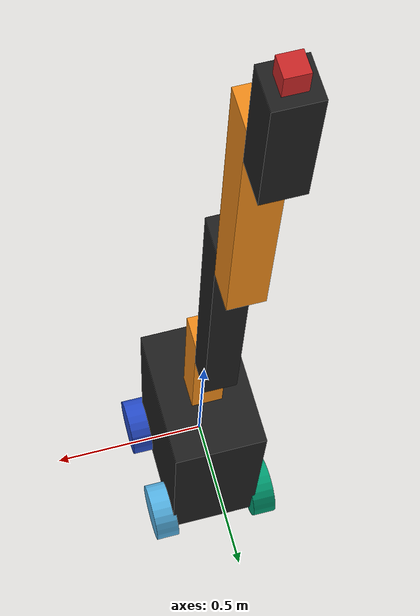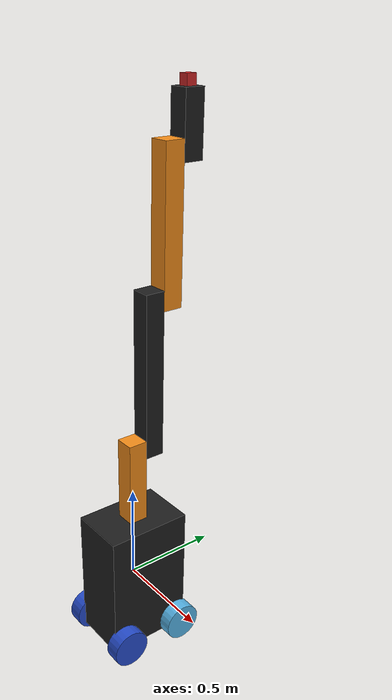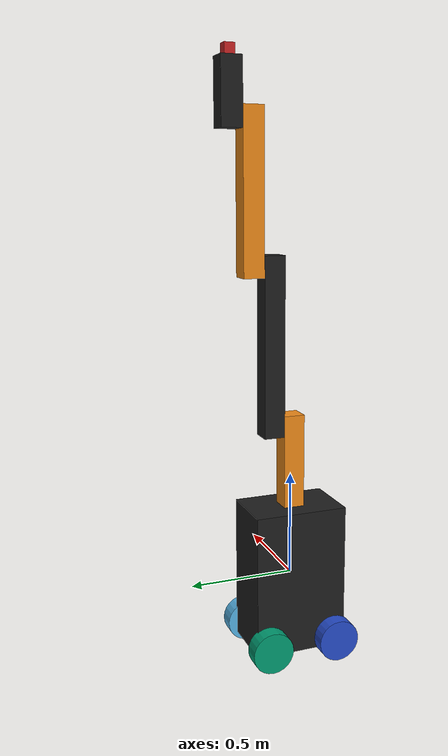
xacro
<?xml version="1.0" ?>
<robot name="rrbot" xmlns:xacro="http://www.ros.org/wiki/xacro">

  <!-- Constants for robot dimensions -->
  <xacro:property name="PI" value="3.1415926535897931"/>
  <xacro:property name="mass1" value="1" />
  <xacro:property name="mass2" value="1" />
  <xacro:property name="mass3" value="1" />
  <xacro:property name="mass4" value="0.5" />
  <xacro:property name="mass_chassis" value="8" /><!-- arbitrary value for mass -->
  <xacro:property name="height" value="0.7" /> <!-- Link 1 -->
  <xacro:property name="x_base" value="0.3" /> <!-- Link 1 -->
  <xacro:property name="y_base" value="0.45" /> <!-- Link 1 -->
  <xacro:property name="castor_offset" value="0.06" /> <!-- Link 1 -->
  <xacro:property name="width" value="0.1" /> <!-- Square dimensions (widthxwidth) of beams -->
  <xacro:property name="height1" value="0.8" /> <!-- Link 1 -->
  <xacro:property name="height2" value="0.85" /> <!-- Link 2 -->
  <xacro:property name="height3" value="0.75" /> <!-- Link 3 -->
  <xacro:property name="height4" value="0.3" /> <!-- Link 4 -->
  <xacro:property name="camera_link" value="0.05" /> <!-- Size of square 'camera' box -->
  <xacro:property name="axel_offset" value="0.05" /> <!-- Space btw top of beam and the each joint -->
  <xacro:include filename="$(find rrbot_description)/urdf/materials.xacro" />
  <xacro:include filename="$(find rrbot_description)/urdf/rr3.gazebo" />
  <xacro:include filename="$(find rrbot_description)/urdf/macros.xacro" />
  <!-- Import all Gazebo-customization elements, including Gazebo colors -->
  <xacro:include filename="$(find rrbot_description)/urdf/rrbot.gazebo" />

  <link name="link_chassis">
    <!-- pose and inertial -->
    <pose>0 0 0.1 0 0 0</pose>
    <inertial>
      <mass value="8"/>
      <origin rpy="0 0 0" xyz="0 0 0"/>
      <inertia ixx="${mass_chassis / 12.0 * (y_base*y_base + height*height)}" ixy="0" ixz="0" iyy="${mass_chassis / 12.0 * (x_base*x_base + height*height)}" iyz="0" izz="${mass_chassis / 12.0 * (y_base*y_base + x_base*x_base)}"/>
    </inertial>
    <!-- body -->
    <collision name="collision_chassis">
      <geometry>
        <box size="${x_base} ${y_base} ${height}"/>
      </geometry>
    </collision>
    <visual>
      <origin rpy="0 0 0" xyz="0 0 0"/>
      <geometry>
        <box size="${x_base} ${y_base} ${height}"/>
      </geometry>
      <material name="black"/>
    </visual>
  </link>

  <joint name="fixed" type="fixed">
    <parent link="link_chassis"/>
    <child link="link1"/>
  </joint>

 <!-- Base Link -->
  <link name="link1">
    <collision>
      <origin xyz="0 0 ${height1/2 + 0.05}" rpy="0 0 0"/>
      <geometry>
	<box size="${width} ${width} ${height1}"/>
      </geometry>
    </collision>

    <visual>
      <origin xyz="0 0 ${height1/2}" rpy="0 0 0"/>
      <geometry>
	<box size="${width} ${width} ${height1}"/>
      </geometry>
      <material name="orange"/>
    </visual>

    <inertial>
      <origin xyz="0 0 ${height1/2}" rpy="0 0 0"/>
      <mass value="${mass1}"/>
      <inertia
	  ixx="${mass1 / 12.0 * (width*width + height1*height1)}" ixy="0.0" ixz="0.0"
	  iyy="${mass1 / 12.0 * (height1*height1 + width*width)}" iyz="0.0"
	  izz="${mass1 / 12.0 * (width*width + width*width)}"/>
    </inertial>
  </link>

  <joint name="joint1" type="continuous">
    <parent link="link1"/>
    <child link="link2"/>
    <origin xyz="0 ${width} ${height1 - axel_offset}" rpy="0 0 0"/>
    <axis xyz="0 1 0"/>
    <dynamics damping="0.7"/>
  </joint>

  <!-- shoulder Link -->
  <link name="link2">
    <collision>
      <origin xyz="0 0 ${height2/2 - axel_offset}" rpy="0 0 0"/>
      <geometry>
	<box size="${width} ${width} ${height2}"/>
      </geometry>
    </collision>

    <visual>
      <origin xyz="0 0 ${height2/2 - axel_offset}" rpy="0 0 0"/>
      <geometry>
	<box size="${width} ${width} ${height2}"/>
      </geometry>
      <material name="black"/>
    </visual>

    <inertial>
      <origin xyz="0 0 ${height2/2 - axel_offset}" rpy="0 0 0"/>
      <mass value="${mass2}"/>
      <inertia
	  ixx="${mass2 / 12.0 * (width*width + height2*height2)}" ixy="0.0" ixz="0.0"
	  iyy="${mass2 / 12.0 * (height2*height2 + width*width)}" iyz="0.0"
	  izz="${mass2 / 12.0 * (width*width + width*width)}"/>
    </inertial>
  </link>

  <joint name="joint2" type="continuous">
    <parent link="link2"/>
    <child link="link3"/>
    <origin xyz="0 ${width} ${height2 - axel_offset*2}" rpy="0 0 0"/>
    <axis xyz="0 1 0"/>
    <dynamics damping="0.7"/>
  </joint>

  <!-- elbow Link -->
  <link name="link3">
    <collision>
      <origin xyz="0 0 ${height3/2 - axel_offset}" rpy="0 0 0"/>
      <geometry>
	<box size="${width} ${width} ${height3}"/>
      </geometry>
    </collision>

    <visual>
      <origin xyz="0 0 ${height3/2 - axel_offset}" rpy="0 0 0"/>
      <geometry>
	<box size="${width} ${width} ${height3}"/>
      </geometry>
      <material name="orange"/>
    </visual>

    <inertial>
      <origin xyz="0 0 ${height3/2 - axel_offset}" rpy="0 0 0"/>
      <mass value="${mass3}"/>
      <inertia
	  ixx="${mass3 / 12.0 * (width*width + height3*height3)}" ixy="0.0" ixz="0.0"
	  iyy="${mass3 / 12.0 * (height3*height3 + width*width)}" iyz="0.0"
	  izz="${mass3 / 12.0 * (width*width + width*width)}"/>
    </inertial>
  </link>

  <joint name="joint3" type="continuous">
    <parent link="link3"/>
    <child link="link4"/>
    <origin xyz="0 ${width} ${height3 - axel_offset*2}" rpy="0 0 0"/>
    <axis xyz="0 1 0"/>
    <dynamics damping="0.7"/>
  </joint>

  <!-- Top Link -->
  <link name="link4">
    <collision>
      <origin xyz="0 0 ${height4/2 - axel_offset}" rpy="0 0 0"/>
      <geometry>
	<box size="${width} ${width} ${height4}"/>
      </geometry>
    </collision>

    <visual>
      <origin xyz="0 0 ${height4/2 - axel_offset}" rpy="0 0 0"/>
      <geometry>
	<box size="${width} ${width} ${height4}"/>
      </geometry>
      <material name="black"/>
    </visual>

    <inertial>
      <origin xyz="0 0 ${height4/2 - axel_offset}" rpy="0 0 0"/>
      <mass value="${mass4}"/>
      <inertia
	  ixx="${mass4 / 12.0 * (width*width + height4*height4)}" ixy="0.0" ixz="0.0"
	  iyy="${mass4 / 12.0 * (height4*height4 + width*width)}" iyz="0.0"
	  izz="${mass4 / 12.0 * (width*width + width*width)}"/>
    </inertial>
  </link>

  <joint name="camera_joint" type="fixed">
    <axis xyz="0 0 1" />
    <origin xyz="0 0 ${height4 - axel_offset/2}" rpy="0 ${-pi/2} 0"/>
    <parent link="link4"/>
    <child link="camera_link"/>
  </joint>

  <!-- Camera -->
  <link name="camera_link">
    <collision>
      <origin xyz="0 0 0" rpy="0 0 0"/>
      <geometry>
	<box size="${camera_link} ${camera_link} ${camera_link}"/>
      </geometry>
    </collision>

    <visual>
      <origin xyz="0 0 0" rpy="0 0 0"/>
      <geometry>
	<box size="${camera_link} ${camera_link} ${camera_link}"/>
      </geometry>
      <material name="red"/>
    </visual>

    <inertial>
      <mass value="1e-5" />
      <origin xyz="0 0 0" rpy="0 0 0"/>
      <inertia ixx="1e-6" ixy="0" ixz="0" iyy="1e-6" iyz="0" izz="1e-6" />
    </inertial>
  </link>

  <!-- generate an optical frame http://www.ros.org/reps/rep-0103.html#suffix-frames
      so that ros and opencv can operate on the camera frame correctly -->
  <joint name="camera_optical_joint" type="fixed">
    <!-- these values have to be these values otherwise the gazebo camera image
        won't be aligned properly with the frame it is supposedly originating from -->
    <origin xyz="0 0 0" rpy="${-pi/2} 0 ${-pi/2}"/>
    <parent link="camera_link"/>
    <child link="camera_link_optical"/>
  </joint>

  <link name="camera_link_optical">
  </link>

  <transmission name="tran1">
    <type>transmission_interface/SimpleTransmission</type>
    <joint name="joint1">
      <hardwareInterface>hardware_interface/EffortJointInterface</hardwareInterface>
    </joint>
    <actuator name="motor1">
      <hardwareInterface>hardware_interface/EffortJointInterface</hardwareInterface>
      <mechanicalReduction>1</mechanicalReduction>
    </actuator>
  </transmission>

  <transmission name="tran2">
    <type>transmission_interface/SimpleTransmission</type>
    <joint name="joint2">
      <hardwareInterface>hardware_interface/EffortJointInterface</hardwareInterface>
    </joint>
    <actuator name="motor2">
      <hardwareInterface>hardware_interface/EffortJointInterface</hardwareInterface>
      <mechanicalReduction>1</mechanicalReduction>
    </actuator>
  </transmission>

    <transmission name="tran3">
    <type>transmission_interface/SimpleTransmission</type>
    <joint name="joint3">
      <hardwareInterface>hardware_interface/EffortJointInterface</hardwareInterface>
    </joint>
    <actuator name="motor3">
      <hardwareInterface>hardware_interface/EffortJointInterface</hardwareInterface>
      <mechanicalReduction>1</mechanicalReduction>
    </actuator>
  </transmission>

  <xacro:link_wheel name="link_right_wheel" />
  <xacro:joint_wheel name="joint_right_wheel" child="link_right_wheel" origin_xyz="0.18 -0.17 -0.3" />

  <xacro:link_wheel name="link_left_wheel" />
  <xacro:joint_wheel name="joint_left_wheel" child="link_left_wheel" origin_xyz="-0.18 -0.17 -0.3" />

  <xacro:link_wheel name="link_rightf_wheel" />
  <xacro:joint_wheel name="joint_rightf_wheel" child="link_rightf_wheel" origin_xyz="0.18 0.17 -0.3" />

  <xacro:link_wheel name="link_leftf_wheel" />
  <xacro:joint_wheel name="joint_leftf_wheel" child="link_leftf_wheel" origin_xyz="-0.18 0.17 -0.3" />
</robot>

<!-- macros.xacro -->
<robot>
    <macro name="link_wheel" params="name">
        <link name="${name}">
            <inertial>
              <mass value="0.8"/>
              <origin rpy="0 1.5707 0" xyz="0 0 0"/>
              <inertia ixx="0.04466666" ixy="0" ixz="0" iyy="0.04466666" iyz="0" izz="0.004"/>
            </inertial>
            <collision name="link_right_wheel_collision">
              <origin rpy="0 1.5707 0" xyz="0 0 0"/>
              <geometry>
                <cylinder length="0.08" radius="0.1"/>
              </geometry>
      		<surface>
        	  <friction>
          	    <ode>
            		<mu>0.1</mu>
            		<mu2>0.1</mu2>
          	    </ode>
        	  </friction>
      		</surface>
            </collision>
            <visual name="${name}_visual">
              <origin rpy="0 1.5707 0" xyz="0 0 0"/>
              <geometry>
                <cylinder length="0.08" radius="0.1"/>
              </geometry>
            </visual>
        </link>
    </macro>

    <macro name="joint_wheel" params="name child origin_xyz">
      <joint name="${name}" type="continuous">
        <origin rpy="0 0 0" xyz="${origin_xyz}"/>
        <child link="${child}"/>
        <parent link="link_chassis"/>
        <axis rpy="0 0 0" xyz="1 0 0"/>
        <limit effort="10000" velocity="1000"/>
        <joint_properties damping="1.0" friction="1.0"/>
      </joint>
    </macro>

    <macro name="cylinder_inertia" params="mass r l">
        <inertia  ixx="${mass*(3*r*r+l*l)/12}" ixy = "0" ixz = "0"
                  iyy="${mass*(3*r*r+l*l)/12}" iyz = "0"
                  izz="${mass*(r*r)/2}" />
    </macro>

</robot>
